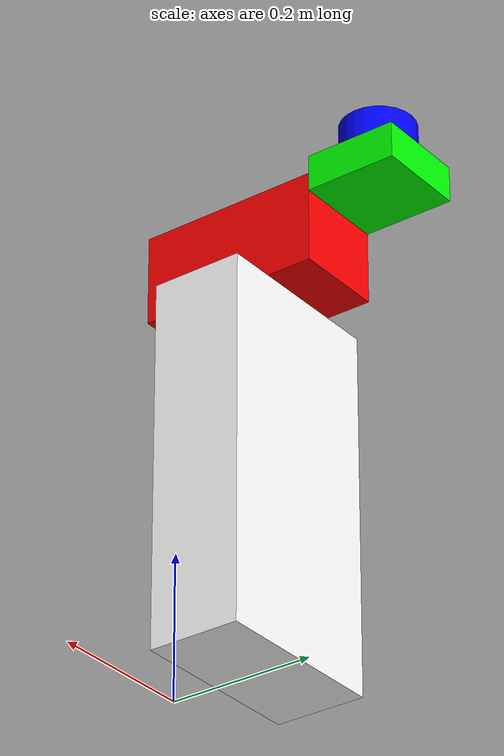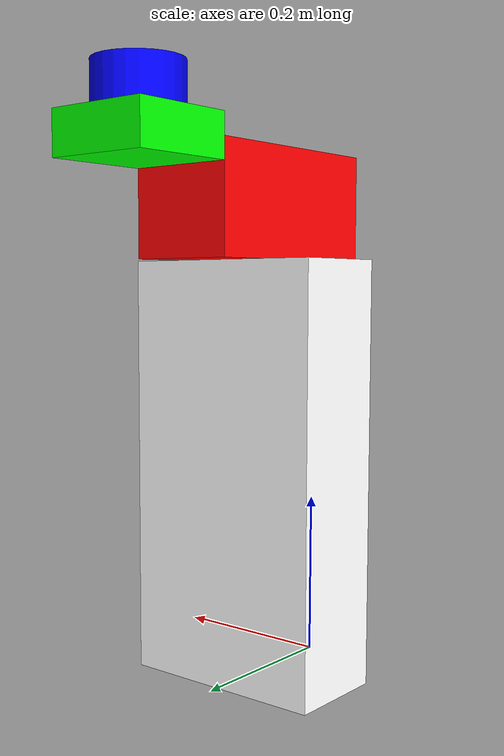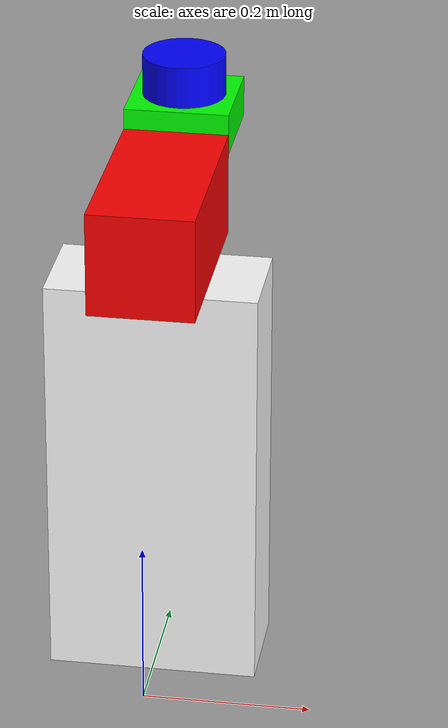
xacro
<?xml version="1.0"?>
<robot xmlns:xacro="http://www.ros.org/wiki/xacro">

    <xacro:include filename="inertial_macros.xacro"/>

    <link name="world"/>

    <joint name="base_joint" type="fixed">
        <parent link="world"/>
        <child link="base_link"/>
        <origin xyz="0.0 0.0 0.0" rpy="0.0 0.0 0.0"/>
    </joint>

    <link name="base_link">
        <visual>
            <origin xyz="0.0 0.125 0.25" rpy="0.0 0.0 0.0"/>
            <geometry>
                <box size="0.25 0.125 0.5"/>
            </geometry>
            <material name="white">
                <color rgba="1.0 1.0 1.0 1.0"/>
            </material>
        </visual>
        <collision>
            <origin xyz="0.0 0.5 0.25" rpy="0.0 0.0 0.0"/>
            <geometry>
                <box size="0.25 0.125 0.5"/>
            </geometry>
        </collision>
        <xacro:inertial_box mass="0.05" x="0.25" y="0.125" z="0.5">
            <origin xyz="0.0 0.25 0.25" rpy="0.0 0.0 0.0"/>
        </xacro:inertial_box>
    </link>

    <link name="motor_link">
        <visual>
            <origin xyz="0.125 0.0 0.0625" rpy="0.0 0.0 0.0"/>
            <geometry>
                <box size="0.25 0.125 0.125"/>
            </geometry>
            <material name="red">
                <color rgba="1.0 0.0 0.0 1.0"/>
            </material>
        </visual>
        <collision>
            <origin xyz="0.125 0.0 0.0625" rpy="0.0 0.0 0.0"/>
            <geometry>
                <box size="0.25 0.125 0.125"/>
            </geometry>
        </collision>
        <xacro:inertial_box mass="0.02" x="0.25" y="0.125" z="0.125">
            <origin xyz="0.125 0.0 0.0625" rpy="0.0 0.0 0.0"/>
        </xacro:inertial_box>
    </link>

    <joint name="motor_to_base_joint" type="fixed">
        <parent link="base_link"/>
        <child link="motor_link"/>
        <origin xyz="0.0 0.0 0.5" rpy="0.0 0.0 1.57"/>
    </joint>

    <link name="lidar_base_link">
        <visual>
            <origin xyz="0.0625 0.0 0.0" rpy="0.0 0.0 0.0"/>
            <geometry>
                <box size="0.125 0.125 0.05"/>
            </geometry>
            <material name="green">
                <color rgba="0.0 1.0 0.0 1.0"/>
            </material>
        </visual>
        <collision>
            <origin xyz="0.0625 0.0 0.0" rpy="0.0 0.0 0.0"/>
            <geometry>
                <box size="0.125 0.125 0.05"/>
            </geometry>
        </collision>
        <xacro:inertial_box mass="0.01" x="0.125" y="0.125" z="0.05">
            <origin xyz="0.0625 0.0 0.0" rpy="0.0 0.0 0.0"/>
        </xacro:inertial_box>
    </link>

    <joint name="lidar_base_to_motor_joint" type="revolute">
        <axis xyz="1.0 0.0 0.0"/>
        <limit lower="-1.57" upper="1.57" effort="1000.0" velocity="0.5"/>
        <origin xyz="0.25 0.0 0.125" rpy="0.0 0.0 0.0"/>
        <parent link="motor_link"/>
        <child link="lidar_base_link"/>
    </joint>

    <link name="lidar_sensor_link">
        <visual>
            <origin xyz="0.0 0.0 0.0" rpy="0.0 0.0 0.0"/>
            <geometry>
                <cylinder radius="0.05" length="0.05"/>
            </geometry>
            <material name="blue">
                <color rgba="0.0 0.0 1.0 1.0"/>
            </material>
        </visual>
        <collision>
            <origin xyz="0.0 0.0 0.0" rpy="0.0 0.0 0.0"/>
            <geometry>
                <cylinder radius="0.05" length="0.05"/>
            </geometry>
            <material name="blue">
                <color rgba="0.0 0.0 1.0 1.0"/>
            </material>
        </collision>
        <xacro:inertial_cylinder mass="0.01" length="0.05" radius="0.05">
            <origin xyz="0.0 0.0 0.0" rpy="0.0 0.0 0.0"/>
        </xacro:inertial_cylinder>
    </link>

    <joint name="lidar_sensor_to_base_joint" type="fixed">
        <parent link="lidar_base_link"/>
        <child link="lidar_sensor_link"/>
        <origin xyz="0.0625 0.0 0.05" rpy="0.0 0.0 0.0"/>
    </joint>

    <gazebo>
        <plugin name="gazebo_ros_control" filename="libgazebo_ros_control.so">
        <robotNamespace>/my_robot</robotNamespace>
        </plugin>
    </gazebo>

    <transmission name="motor_to_lidar_base">
        <type>transmission_interface/SimpleTranmission</type>
        <actuator name="motor 1">
        <mechanicalReduction>1</mechanicalReduction>
        </actuator>
        <joint name="lidar_base_to_motor_joint">
            <hardwareInterface>hardware_interface/PositionJointInterface</hardwareInterface>
        </joint>
    </transmission>

</robot>
